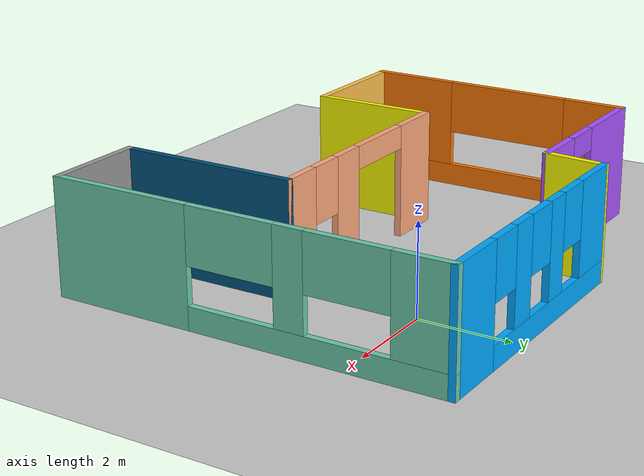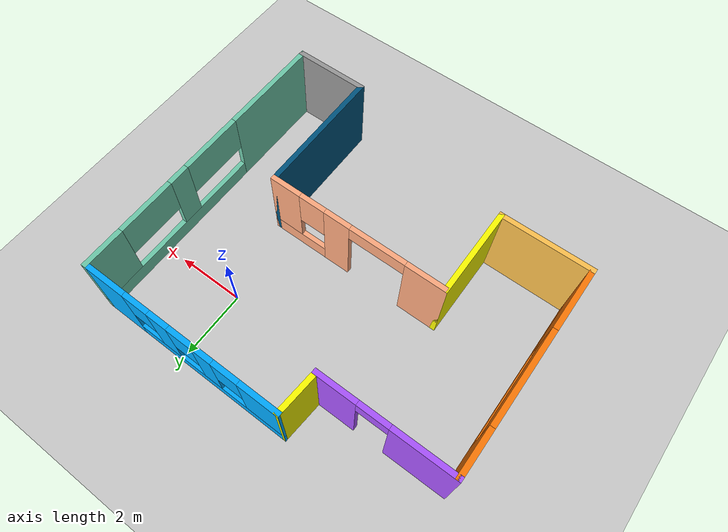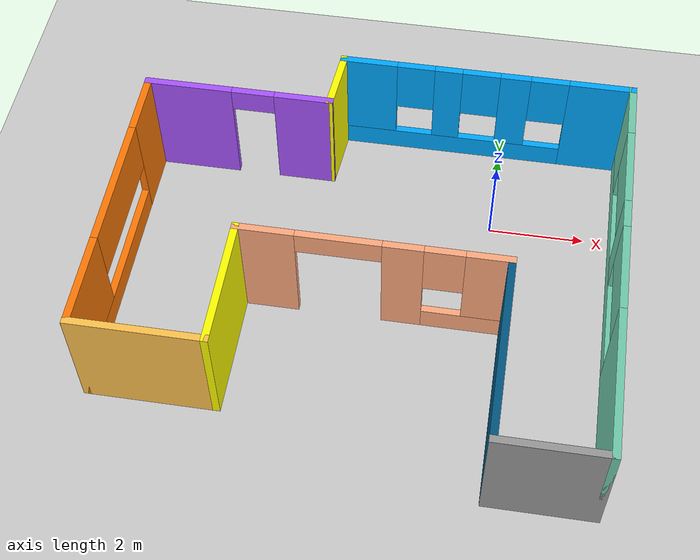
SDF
<sdf version="1.6">
 <world name="default">
  <include><uri>model://sun</uri></include>
  <include><uri>model://ground_plane</uri></include>
  <physics type="ode">
   <real_time_update_rate>1000.0</real_time_update_rate>
   <max_step_size>0.001</max_step_size>
   <real_time_factor>1</real_time_factor>
   <ode>
    <solver>
     <type>quick</type>
     <iters>150</iters>
     <precon_iters>0</precon_iters>
     <sor>1.400000</sor>
     <use_dynamic_moi_rescaling>1</use_dynamic_moi_rescaling>
    </solver>
    <constraints>
     <cfm>0.00001</cfm>
     <erp>0.2</erp>
     <contact_max_correcting_vel>2000.000000</contact_max_correcting_vel>
     <contact_surface_layer>0.01000</contact_surface_layer>
    </constraints>
   </ode>
  </physics>
  <include><uri>model://single_room</uri></include>
  <scene><ambient>0.4 0.4 0.4 1</ambient><background>0.7 0.7 0.7 1</background><shadows>true</shadows></scene>
 </world>
</sdf>

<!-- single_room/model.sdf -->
<sdf version='1.7'>
  <model name='single_room'>
    <pose> 0 2 0 0 0 0</pose>
    <link name='Wall_0'>
      <pose>-5.5225 -1.0725 0 0 -0 3.14159</pose>
      <visual name='Wall_0_Visual_0'>
        <pose>-1.3775 0 1.25 0 -0 0</pose>
        <geometry>
          <box>
            <size>1.245 0.15 2.5</size>
          </box>
        </geometry>
        <material>
          <script>
            <uri>file://media/materials/scripts/gazebo.material</uri>
            <name>Gazebo/Grey</name>
          </script>
          <ambient>0.666667 0.333333 1 1</ambient>
        </material>
        <meta>
          <layer>0</layer>
        </meta>
      </visual>
      <collision name='Wall_0_Collision_0'>
        <geometry>
          <box>
            <size>1.245 0.15 2.5</size>
          </box>
        </geometry>
        <pose>-1.3775 0 1.25 0 -0 0</pose>
      </collision>
      <visual name='Wall_0_Visual_1'>
        <pose>1.0725 0 1.25 0 -0 0</pose>
        <geometry>
          <box>
            <size>1.855 0.15 2.5</size>
          </box>
        </geometry>
        <material>
          <script>
            <uri>file://media/materials/scripts/gazebo.material</uri>
            <name>Gazebo/Grey</name>
          </script>
          <ambient>0.666667 0.333333 1 1</ambient>
        </material>
        <meta>
          <layer>0</layer>
        </meta>
      </visual>
      <collision name='Wall_0_Collision_1'>
        <geometry>
          <box>
            <size>1.855 0.15 2.5</size>
          </box>
        </geometry>
        <pose>1.0725 0 1.25 0 -0 0</pose>
      </collision>
      <visual name='Wall_0_Visual_2'>
        <pose>-0.305 0 2.25 0 -0 0</pose>
        <geometry>
          <box>
            <size>0.9 0.15 0.5</size>
          </box>
        </geometry>
        <material>
          <script>
            <uri>file://media/materials/scripts/gazebo.material</uri>
            <name>Gazebo/Grey</name>
          </script>
          <ambient>0.666667 0.333333 1 1</ambient>
        </material>
        <meta>
          <layer>0</layer>
        </meta>
      </visual>
      <collision name='Wall_0_Collision_2'>
        <geometry>
          <box>
            <size>0.9 0.15 0.5</size>
          </box>
        </geometry>
        <pose>-0.305 0 2.25 0 -0 0</pose>
      </collision>
    </link>
    <link name='Wall_1'>
      <pose>-7.4475 -4.1225 0 0 -0 -1.5708</pose>
      <visual name='Wall_1_Visual_0'>
        <pose>-2.4175 0 1.25 0 -0 0</pose>
        <geometry>
          <box>
            <size>1.415 0.15 2.5</size>
          </box>
        </geometry>
        <material>
          <script>
            <uri>file://media/materials/scripts/gazebo.material</uri>
            <name>Gazebo/Grey</name>
          </script>
          <ambient>0.996078 0.47451 0.0196078 1</ambient>
        </material>
        <meta>
          <layer>0</layer>
        </meta>
      </visual>
      <collision name='Wall_1_Collision_0'>
        <geometry>
          <box>
            <size>1.415 0.15 2.5</size>
          </box>
        </geometry>
        <pose>-2.4175 0 1.25 0 -0 0</pose>
      </collision>
      <visual name='Wall_1_Visual_1'>
        <pose>0.7075 0 0.25 0 -0 0</pose>
        <geometry>
          <box>
            <size>4.835 0.15 0.5</size>
          </box>
        </geometry>
        <material>
          <script>
            <uri>file://media/materials/scripts/gazebo.material</uri>
            <name>Gazebo/Grey</name>
          </script>
          <ambient>0.996078 0.47451 0.0196078 1</ambient>
        </material>
        <meta>
          <layer>0</layer>
        </meta>
      </visual>
      <collision name='Wall_1_Collision_1'>
        <geometry>
          <box>
            <size>4.835 0.15 0.5</size>
          </box>
        </geometry>
        <pose>0.7075 0 0.25 0 -0 0</pose>
      </collision>
      <visual name='Wall_1_Visual_2'>
        <pose>2.1325 0 1.5 0 -0 0</pose>
        <geometry>
          <box>
            <size>1.985 0.15 2</size>
          </box>
        </geometry>
        <material>
          <script>
            <uri>file://media/materials/scripts/gazebo.material</uri>
            <name>Gazebo/Grey</name>
          </script>
          <ambient>0.996078 0.47451 0.0196078 1</ambient>
        </material>
        <meta>
          <layer>0</layer>
        </meta>
      </visual>
      <collision name='Wall_1_Collision_2'>
        <geometry>
          <box>
            <size>1.985 0.15 2</size>
          </box>
        </geometry>
        <pose>2.1325 0 1.5 0 -0 0</pose>
      </collision>
      <visual name='Wall_1_Visual_3'>
        <pose>-0.285 0 1.9 0 -0 0</pose>
        <geometry>
          <box>
            <size>2.85 0.15 1.2</size>
          </box>
        </geometry>
        <material>
          <script>
            <uri>file://media/materials/scripts/gazebo.material</uri>
            <name>Gazebo/Grey</name>
          </script>
          <ambient>0.996078 0.47451 0.0196078 1</ambient>
        </material>
        <meta>
          <layer>0</layer>
        </meta>
      </visual>
      <collision name='Wall_1_Collision_3'>
        <geometry>
          <box>
            <size>2.85 0.15 1.2</size>
          </box>
        </geometry>
        <pose>-0.285 0 1.9 0 -0 0</pose>
      </collision>
    </link>
    <link name='Wall_2'>
      <collision name='Wall_2_Collision'>
        <geometry>
          <box>
            <size>2.75 0.15 2.5</size>
          </box>
        </geometry>
        <pose>0 0 1.25 0 -0 0</pose>
      </collision>
      <visual name='Wall_2_Visual'>
        <pose>0 0 1.25 0 -0 0</pose>
        <geometry>
          <box>
            <size>2.75 0.15 2.5</size>
          </box>
        </geometry>
        <material>
          <script>
            <uri>file://media/materials/scripts/gazebo.material</uri>
            <name>Gazebo/Grey</name>
          </script>
          <ambient>1 0.764706 0.305882 1</ambient>
        </material>
        <meta>
          <layer>0</layer>
        </meta>
      </visual>
      <pose>-6.1475 -7.1725 0 0 -0 0</pose>
    </link>
    <link name='Wall_3'>
      <collision name='Wall_3_Collision'>
        <geometry>
          <box>
            <size>2.75 0.15 2.5</size>
          </box>
        </geometry>
        <pose>0 0 1.25 0 -0 0</pose>
      </collision>
      <visual name='Wall_3_Visual'>
        <pose>0 0 1.25 0 -0 0</pose>
        <geometry>
          <box>
            <size>2.75 0.15 2.5</size>
          </box>
        </geometry>
        <material>
          <script>
            <uri>file://media/materials/scripts/gazebo.material</uri>
            <name>Gazebo/Grey</name>
          </script>
          <ambient>1 1 0 1</ambient>
        </material>
        <meta>
          <layer>0</layer>
        </meta>
      </visual>
      <pose>-4.8475 -5.8725 0 0 -0 1.5708</pose>
    </link>
    <link name='Wall_4'>
      <pose>-2.1725 -4.5725 0 0 -0 0</pose>
      <visual name='Wall_4_Visual_0'>
        <pose>-2.1325 0 1.25 0 -0 0</pose>
        <geometry>
          <box>
            <size>1.235 0.15 2.5</size>
          </box>
        </geometry>
        <material>
          <script>
            <uri>file://media/materials/scripts/gazebo.material</uri>
            <name>Gazebo/Grey</name>
          </script>
          <ambient>1 0.666667 0.498039 1</ambient>
        </material>
        <meta>
          <layer>0</layer>
        </meta>
      </visual>
      <collision name='Wall_4_Collision_0'>
        <geometry>
          <box>
            <size>1.235 0.15 2.5</size>
          </box>
        </geometry>
        <pose>-2.1325 0 1.25 0 -0 0</pose>
      </collision>
      <visual name='Wall_4_Visual_1'>
        <pose>0.59 0 1.25 0 -0 0</pose>
        <geometry>
          <box>
            <size>0.809999 0.15 2.5</size>
          </box>
        </geometry>
        <material>
          <script>
            <uri>file://media/materials/scripts/gazebo.material</uri>
            <name>Gazebo/Grey</name>
          </script>
          <ambient>1 0.666667 0.498039 1</ambient>
        </material>
        <meta>
          <layer>0</layer>
        </meta>
      </visual>
      <collision name='Wall_4_Collision_1'>
        <geometry>
          <box>
            <size>0.809999 0.15 2.5</size>
          </box>
        </geometry>
        <pose>0.59 0 1.25 0 -0 0</pose>
      </collision>
      <visual name='Wall_4_Visual_2'>
        <pose>1.8725 0 0.25 0 -0 0</pose>
        <geometry>
          <box>
            <size>1.755 0.15 0.5</size>
          </box>
        </geometry>
        <material>
          <script>
            <uri>file://media/materials/scripts/gazebo.material</uri>
            <name>Gazebo/Grey</name>
          </script>
          <ambient>1 0.666667 0.498039 1</ambient>
        </material>
        <meta>
          <layer>0</layer>
        </meta>
      </visual>
      <collision name='Wall_4_Collision_2'>
        <geometry>
          <box>
            <size>1.755 0.15 0.5</size>
          </box>
        </geometry>
        <pose>1.8725 0 0.25 0 -0 0</pose>
      </collision>
      <visual name='Wall_4_Visual_3'>
        <pose>2.2725 0 1.5 0 -0 0</pose>
        <geometry>
          <box>
            <size>0.955 0.15 2</size>
          </box>
        </geometry>
        <material>
          <script>
            <uri>file://media/materials/scripts/gazebo.material</uri>
            <name>Gazebo/Grey</name>
          </script>
          <ambient>1 0.666667 0.498039 1</ambient>
        </material>
        <meta>
          <layer>0</layer>
        </meta>
      </visual>
      <collision name='Wall_4_Collision_3'>
        <geometry>
          <box>
            <size>0.955 0.15 2</size>
          </box>
        </geometry>
        <pose>2.2725 0 1.5 0 -0 0</pose>
      </collision>
      <visual name='Wall_4_Visual_4'>
        <pose>1.395 0 1.9 0 -0 0</pose>
        <geometry>
          <box>
            <size>0.8 0.15 1.2</size>
          </box>
        </geometry>
        <material>
          <script>
            <uri>file://media/materials/scripts/gazebo.material</uri>
            <name>Gazebo/Grey</name>
          </script>
          <ambient>1 0.666667 0.498039 1</ambient>
        </material>
        <meta>
          <layer>0</layer>
        </meta>
      </visual>
      <collision name='Wall_4_Collision_4'>
        <geometry>
          <box>
            <size>0.8 0.15 1.2</size>
          </box>
        </geometry>
        <pose>1.395 0 1.9 0 -0 0</pose>
      </collision>
      <visual name='Wall_4_Visual_5'>
        <pose>-0.665 0 2.25 0 -0 0</pose>
        <geometry>
          <box>
            <size>1.7 0.15 0.5</size>
          </box>
        </geometry>
        <material>
          <script>
            <uri>file://media/materials/scripts/gazebo.material</uri>
            <name>Gazebo/Grey</name>
          </script>
          <ambient>1 0.666667 0.498039 1</ambient>
        </material>
        <meta>
          <layer>0</layer>
        </meta>
      </visual>
      <collision name='Wall_4_Collision_5'>
        <geometry>
          <box>
            <size>1.7 0.15 0.5</size>
          </box>
        </geometry>
        <pose>-0.665 0 2.25 0 -0 0</pose>
      </collision>
    </link>
    <link name='Wall_5'>
      <collision name='Wall_5_Collision'>
        <geometry>
          <box>
            <size>4 0.15 2.5</size>
          </box>
        </geometry>
        <pose>0 0 1.25 0 -0 0</pose>
      </collision>
      <visual name='Wall_5_Visual'>
        <pose>0 0 1.25 0 -0 0</pose>
        <geometry>
          <box>
            <size>4 0.15 2.5</size>
          </box>
        </geometry>
        <material>
          <script>
            <uri>file://media/materials/scripts/gazebo.material</uri>
            <name>Gazebo/Grey</name>
          </script>
          <ambient>0 0.333333 0.498039 1</ambient>
        </material>
        <meta>
          <layer>0</layer>
        </meta>
      </visual>
      <pose>0.502501 -6.4975 0 0 -0 -1.5708</pose>
    </link>
    <link name='Wall_6'>
      <collision name='Wall_6_Collision'>
        <geometry>
          <box>
            <size>2.25 0.15 2.5</size>
          </box>
        </geometry>
        <pose>0 0 1.25 0 -0 0</pose>
      </collision>
      <visual name='Wall_6_Visual'>
        <pose>0 0 1.25 0 -0 0</pose>
        <geometry>
          <box>
            <size>2.25 0.15 2.5</size>
          </box>
        </geometry>
        <material>
          <script>
            <uri>file://media/materials/scripts/gazebo.material</uri>
            <name>Gazebo/Grey</name>
          </script>
          <ambient>1 1 1 1</ambient>
        </material>
        <meta>
          <layer>0</layer>
        </meta>
      </visual>
      <pose>1.5525 -8.4225 0 0 -0 0</pose>
    </link>
    <link name='Wall_7'>
      <pose>2.6025 -4.1225 0 0 -0 1.5708</pose>
      <visual name='Wall_7_Visual_0'>
        <pose>-2.8075 0 1.25 0 -0 0</pose>
        <geometry>
          <box>
            <size>3.135 0.15 2.5</size>
          </box>
        </geometry>
        <material>
          <script>
            <uri>file://media/materials/scripts/gazebo.material</uri>
            <name>Gazebo/Grey</name>
          </script>
          <ambient>0.435294 0.796078 0.67451 1</ambient>
        </material>
        <meta>
          <layer>0</layer>
        </meta>
      </visual>
      <collision name='Wall_7_Collision_0'>
        <geometry>
          <box>
            <size>3.135 0.15 2.5</size>
          </box>
        </geometry>
        <pose>-2.8075 0 1.25 0 -0 0</pose>
      </collision>
      <visual name='Wall_7_Visual_1'>
        <pose>1.5675 0 0.25 0 -0 0</pose>
        <geometry>
          <box>
            <size>5.615 0.15 0.5</size>
          </box>
        </geometry>
        <material>
          <script>
            <uri>file://media/materials/scripts/gazebo.material</uri>
            <name>Gazebo/Grey</name>
          </script>
          <ambient>0.435294 0.796078 0.67451 1</ambient>
        </material>
        <meta>
          <layer>0</layer>
        </meta>
      </visual>
      <collision name='Wall_7_Collision_1'>
        <geometry>
          <box>
            <size>5.615 0.15 0.5</size>
          </box>
        </geometry>
        <pose>1.5675 0 0.25 0 -0 0</pose>
      </collision>
      <visual name='Wall_7_Visual_2'>
        <pose>1 0 1.5 0 -0 0</pose>
        <geometry>
          <box>
            <size>0.64 0.15 2</size>
          </box>
        </geometry>
        <material>
          <script>
            <uri>file://media/materials/scripts/gazebo.material</uri>
            <name>Gazebo/Grey</name>
          </script>
          <ambient>0.435294 0.796078 0.67451 1</ambient>
        </material>
        <meta>
          <layer>0</layer>
        </meta>
      </visual>
      <collision name='Wall_7_Collision_2'>
        <geometry>
          <box>
            <size>0.64 0.15 2</size>
          </box>
        </geometry>
        <pose>1 0 1.5 0 -0 0</pose>
      </collision>
      <visual name='Wall_7_Visual_3'>
        <pose>3.7375 0 1.5 0 -0 0</pose>
        <geometry>
          <box>
            <size>1.275 0.15 2</size>
          </box>
        </geometry>
        <material>
          <script>
            <uri>file://media/materials/scripts/gazebo.material</uri>
            <name>Gazebo/Grey</name>
          </script>
          <ambient>0.435294 0.796078 0.67451 1</ambient>
        </material>
        <meta>
          <layer>0</layer>
        </meta>
      </visual>
      <collision name='Wall_7_Collision_3'>
        <geometry>
          <box>
            <size>1.275 0.15 2</size>
          </box>
        </geometry>
        <pose>3.7375 0 1.5 0 -0 0</pose>
      </collision>
      <visual name='Wall_7_Visual_4'>
        <pose>-0.28 0 1.9 0 -0 0</pose>
        <geometry>
          <box>
            <size>1.92 0.15 1.2</size>
          </box>
        </geometry>
        <material>
          <script>
            <uri>file://media/materials/scripts/gazebo.material</uri>
            <name>Gazebo/Grey</name>
          </script>
          <ambient>0.435294 0.796078 0.67451 1</ambient>
        </material>
        <meta>
          <layer>0</layer>
        </meta>
      </visual>
      <collision name='Wall_7_Collision_4'>
        <geometry>
          <box>
            <size>1.92 0.15 1.2</size>
          </box>
        </geometry>
        <pose>-0.28 0 1.9 0 -0 0</pose>
      </collision>
      <visual name='Wall_7_Visual_5'>
        <pose>2.21 0 1.9 0 -0 0</pose>
        <geometry>
          <box>
            <size>1.78 0.15 1.2</size>
          </box>
        </geometry>
        <material>
          <script>
            <uri>file://media/materials/scripts/gazebo.material</uri>
            <name>Gazebo/Grey</name>
          </script>
          <ambient>0.435294 0.796078 0.67451 1</ambient>
        </material>
        <meta>
          <layer>0</layer>
        </meta>
      </visual>
      <collision name='Wall_7_Collision_5'>
        <geometry>
          <box>
            <size>1.78 0.15 1.2</size>
          </box>
        </geometry>
        <pose>2.21 0 1.9 0 -0 0</pose>
      </collision>
    </link>
    <link name='Wall_8'>
      <pose>-0.447499 0.177501 0 0 -0 3.14159</pose>
      <visual name='Wall_8_Visual_0'>
        <pose>-2.4275 0 1.25 0 -0 0</pose>
        <geometry>
          <box>
            <size>1.395 0.15 2.5</size>
          </box>
        </geometry>
        <material>
          <script>
            <uri>file://media/materials/scripts/gazebo.material</uri>
            <name>Gazebo/Grey</name>
          </script>
          <ambient>0 0.666667 1 1</ambient>
        </material>
        <meta>
          <layer>0</layer>
        </meta>
      </visual>
      <collision name='Wall_8_Collision_0'>
        <geometry>
          <box>
            <size>1.395 0.15 2.5</size>
          </box>
        </geometry>
        <pose>-2.4275 0 1.25 0 -0 0</pose>
      </collision>
      <visual name='Wall_8_Visual_1'>
        <pose>0.6975 0 0.25 0 -0 0</pose>
        <geometry>
          <box>
            <size>4.855 0.15 0.5</size>
          </box>
        </geometry>
        <material>
          <script>
            <uri>file://media/materials/scripts/gazebo.material</uri>
            <name>Gazebo/Grey</name>
          </script>
          <ambient>0 0.666667 1 1</ambient>
        </material>
        <meta>
          <layer>0</layer>
        </meta>
      </visual>
      <collision name='Wall_8_Collision_1'>
        <geometry>
          <box>
            <size>4.855 0.15 0.5</size>
          </box>
        </geometry>
        <pose>0.6975 0 0.25 0 -0 0</pose>
      </collision>
      <visual name='Wall_8_Visual_2'>
        <pose>-0.61 0 1.5 0 -0 0</pose>
        <geometry>
          <box>
            <size>0.64 0.15 2</size>
          </box>
        </geometry>
        <material>
          <script>
            <uri>file://media/materials/scripts/gazebo.material</uri>
            <name>Gazebo/Grey</name>
          </script>
          <ambient>0 0.666667 1 1</ambient>
        </material>
        <meta>
          <layer>0</layer>
        </meta>
      </visual>
      <collision name='Wall_8_Collision_2'>
        <geometry>
          <box>
            <size>0.64 0.15 2</size>
          </box>
        </geometry>
        <pose>-0.61 0 1.5 0 -0 0</pose>
      </collision>
      <visual name='Wall_8_Visual_3'>
        <pose>0.805 0 1.5 0 -0 0</pose>
        <geometry>
          <box>
            <size>0.59 0.15 2</size>
          </box>
        </geometry>
        <material>
          <script>
            <uri>file://media/materials/scripts/gazebo.material</uri>
            <name>Gazebo/Grey</name>
          </script>
          <ambient>0 0.666667 1 1</ambient>
        </material>
        <meta>
          <layer>0</layer>
        </meta>
      </visual>
      <collision name='Wall_8_Collision_3'>
        <geometry>
          <box>
            <size>0.59 0.15 2</size>
          </box>
        </geometry>
        <pose>0.805 0 1.5 0 -0 0</pose>
      </collision>
      <visual name='Wall_8_Visual_4'>
        <pose>2.5125 0 1.5 0 -0 0</pose>
        <geometry>
          <box>
            <size>1.225 0.15 2</size>
          </box>
        </geometry>
        <material>
          <script>
            <uri>file://media/materials/scripts/gazebo.material</uri>
            <name>Gazebo/Grey</name>
          </script>
          <ambient>0 0.666667 1 1</ambient>
        </material>
        <meta>
          <layer>0</layer>
        </meta>
      </visual>
      <collision name='Wall_8_Collision_4'>
        <geometry>
          <box>
            <size>1.225 0.15 2</size>
          </box>
        </geometry>
        <pose>2.5125 0 1.5 0 -0 0</pose>
      </collision>
      <visual name='Wall_8_Visual_5'>
        <pose>-1.33 0 1.9 0 -0 0</pose>
        <geometry>
          <box>
            <size>0.8 0.15 1.2</size>
          </box>
        </geometry>
        <material>
          <script>
            <uri>file://media/materials/scripts/gazebo.material</uri>
            <name>Gazebo/Grey</name>
          </script>
          <ambient>0 0.666667 1 1</ambient>
        </material>
        <meta>
          <layer>0</layer>
        </meta>
      </visual>
      <collision name='Wall_8_Collision_5'>
        <geometry>
          <box>
            <size>0.8 0.15 1.2</size>
          </box>
        </geometry>
        <pose>-1.33 0 1.9 0 -0 0</pose>
      </collision>
      <visual name='Wall_8_Visual_6'>
        <pose>0.11 0 1.9 0 -0 0</pose>
        <geometry>
          <box>
            <size>0.8 0.15 1.2</size>
          </box>
        </geometry>
        <material>
          <script>
            <uri>file://media/materials/scripts/gazebo.material</uri>
            <name>Gazebo/Grey</name>
          </script>
          <ambient>0 0.666667 1 1</ambient>
        </material>
        <meta>
          <layer>0</layer>
        </meta>
      </visual>
      <collision name='Wall_8_Collision_6'>
        <geometry>
          <box>
            <size>0.8 0.15 1.2</size>
          </box>
        </geometry>
        <pose>0.11 0 1.9 0 -0 0</pose>
      </collision>
      <visual name='Wall_8_Visual_7'>
        <pose>1.5 0 1.9 0 -0 0</pose>
        <geometry>
          <box>
            <size>0.8 0.15 1.2</size>
          </box>
        </geometry>
        <material>
          <script>
            <uri>file://media/materials/scripts/gazebo.material</uri>
            <name>Gazebo/Grey</name>
          </script>
          <ambient>0 0.666667 1 1</ambient>
        </material>
        <meta>
          <layer>0</layer>
        </meta>
      </visual>
      <collision name='Wall_8_Collision_7'>
        <geometry>
          <box>
            <size>0.8 0.15 1.2</size>
          </box>
        </geometry>
        <pose>1.5 0 1.9 0 -0 0</pose>
      </collision>
    </link>
    <link name='Wall_9'>
      <collision name='Wall_9_Collision'>
        <geometry>
          <box>
            <size>1.40399 0.15 2.5</size>
          </box>
        </geometry>
        <pose>0 0 1.25 0 -0 0</pose>
      </collision>
      <visual name='Wall_9_Visual'>
        <pose>0 0 1.25 0 -0 0</pose>
        <geometry>
          <box>
            <size>1.40399 0.15 2.5</size>
          </box>
        </geometry>
        <material>
          <script>
            <uri>file://media/materials/scripts/gazebo.material</uri>
            <name>Gazebo/Grey</name>
          </script>
          <ambient>1 1 0 1</ambient>
        </material>
        <meta>
          <layer>0</layer>
        </meta>
      </visual>
      <pose>-3.5475 -0.447499 0 0 -0 -1.65063</pose>
    </link>
    <static>1</static>
  </model>
</sdf>
